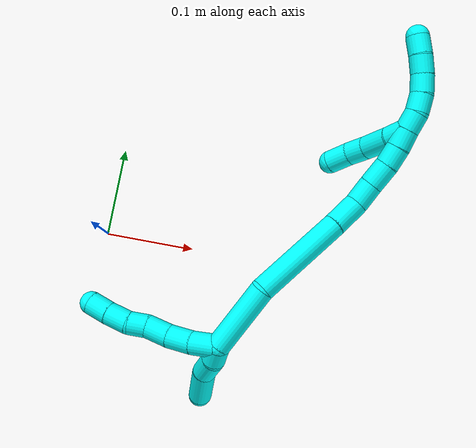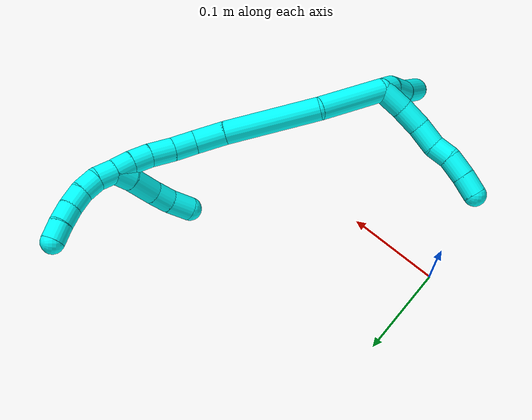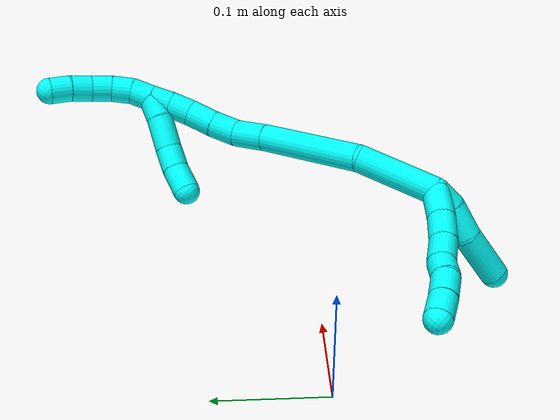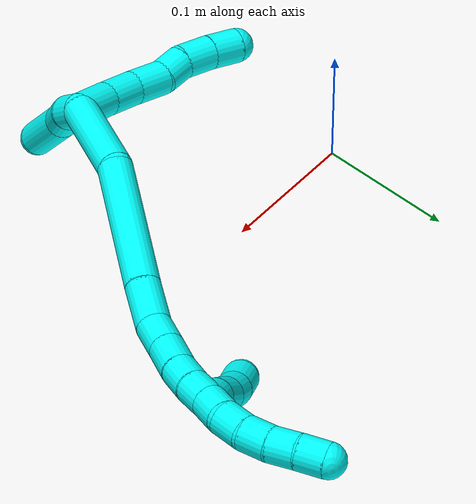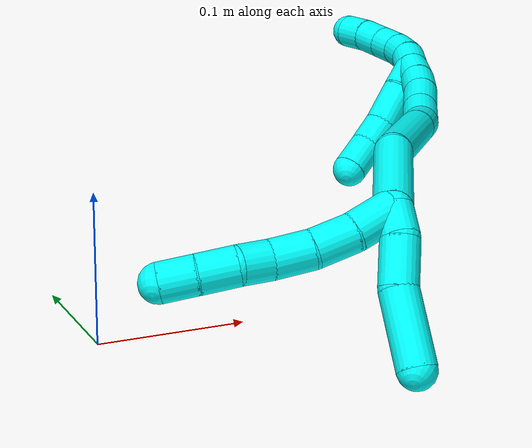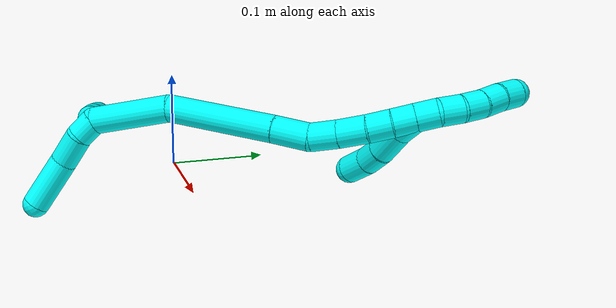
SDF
<sdf version="1.7">
 <world name="default">
  <model name="3">
   <static>0</static>
   <link name="3">
    <collision name="collision-cylinder-e_1_2_8">
     <pose>-0.003425 0.009764 -0.01035 -2.3853 -0.236238 0.580569</pose>
     <geometry><cylinder><radius>0.0125</radius><length>0.029271</length></cylinder></geometry>
     <surface>
      <friction><ode><mu>1.16</mu><mu2>1.16</mu2><slip1>0</slip1><slip2>0</slip2></ode></friction>
      <contact><ode><kp>1e+06</kp><kd>1</kd><max_vel>0</max_vel><min_depth>0.001</min_depth></ode></contact>
     </surface>
    </collision>
    <visual name="visual-cylinder-e_1_2_8">
     <pose>-0.003425 0.009764 -0.01035 -2.3853 -0.236238 0.580569</pose>
     <geometry><cylinder><radius>0.0125</radius><length>0.029271</length></cylinder></geometry>
     <material><ambient>0.003922 1 0.996078 1</ambient></material>
    </visual>
    <collision name="collision-cylinder-e_2_8_9">
     <pose>-0.011339 0.029308 -0.028654 -2.25359 -0.342036 0.696543</pose>
     <geometry><cylinder><radius>0.0125</radius><length>0.026762</length></cylinder></geometry>
     <surface>
      <friction><ode><mu>1.16</mu><mu2>1.16</mu2><slip1>0</slip1><slip2>0</slip2></ode></friction>
      <contact><ode><kp>1e+06</kp><kd>1</kd><max_vel>0</max_vel><min_depth>0.001</min_depth></ode></contact>
     </surface>
    </collision>
    <visual name="visual-cylinder-e_2_8_9">
     <pose>-0.011339 0.029308 -0.028654 -2.25359 -0.342036 0.696543</pose>
     <geometry><cylinder><radius>0.0125</radius><length>0.026762</length></cylinder></geometry>
     <material><ambient>0.003922 1 0.996078 1</ambient></material>
    </visual>
    <collision name="collision-cylinder-e_3_9_10">
     <pose>-0.021246 0.049394 -0.042582 -2.09618 -0.426945 0.719717</pose>
     <geometry><cylinder><radius>0.0125</radius><length>0.026175</length></cylinder></geometry>
     <surface>
      <friction><ode><mu>1.16</mu><mu2>1.16</mu2><slip1>0</slip1><slip2>0</slip2></ode></friction>
      <contact><ode><kp>1e+06</kp><kd>1</kd><max_vel>0</max_vel><min_depth>0.001</min_depth></ode></contact>
     </surface>
    </collision>
    <visual name="visual-cylinder-e_3_9_10">
     <pose>-0.021246 0.049394 -0.042582 -2.09618 -0.426945 0.719717</pose>
     <geometry><cylinder><radius>0.0125</radius><length>0.026175</length></cylinder></geometry>
     <material><ambient>0.003922 1 0.996078 1</ambient></material>
    </visual>
    <collision name="collision-cylinder-e_4_10_11">
     <pose>-0.032439 0.065698 -0.05448 -2.34992 -0.600462 1.27521</pose>
     <geometry><cylinder><radius>0.0125</radius><length>0.020434</length></cylinder></geometry>
     <surface>
      <friction><ode><mu>1.16</mu><mu2>1.16</mu2><slip1>0</slip1><slip2>0</slip2></ode></friction>
      <contact><ode><kp>1e+06</kp><kd>1</kd><max_vel>0</max_vel><min_depth>0.001</min_depth></ode></contact>
     </surface>
    </collision>
    <visual name="visual-cylinder-e_4_10_11">
     <pose>-0.032439 0.065698 -0.05448 -2.34992 -0.600462 1.27521</pose>
     <geometry><cylinder><radius>0.0125</radius><length>0.020434</length></cylinder></geometry>
     <material><ambient>0.003922 1 0.996078 1</ambient></material>
    </visual>
    <collision name="collision-cylinder-e_5_11_12">
     <pose>-0.043411 0.081353 -0.065646 -2.06818 -0.442009 0.722142</pose>
     <geometry><cylinder><radius>0.0125</radius><length>0.024314</length></cylinder></geometry>
     <surface>
      <friction><ode><mu>1.16</mu><mu2>1.16</mu2><slip1>0</slip1><slip2>0</slip2></ode></friction>
      <contact><ode><kp>1e+06</kp><kd>1</kd><max_vel>0</max_vel><min_depth>0.001</min_depth></ode></contact>
     </surface>
    </collision>
    <visual name="visual-cylinder-e_5_11_12">
     <pose>-0.043411 0.081353 -0.065646 -2.06818 -0.442009 0.722142</pose>
     <geometry><cylinder><radius>0.0125</radius><length>0.024314</length></cylinder></geometry>
     <material><ambient>0.003922 1 0.996078 1</ambient></material>
    </visual>
    <collision name="collision-cylinder-e_6_12_6">
     <pose>-0.053121 0.100711 -0.07517 -1.98642 -0.402113 0.60618</pose>
     <geometry><cylinder><radius>0.0125</radius><length>0.023045</length></cylinder></geometry>
     <surface>
      <friction><ode><mu>1.16</mu><mu2>1.16</mu2><slip1>0</slip1><slip2>0</slip2></ode></friction>
      <contact><ode><kp>1e+06</kp><kd>1</kd><max_vel>0</max_vel><min_depth>0.001</min_depth></ode></contact>
     </surface>
    </collision>
    <visual name="visual-cylinder-e_6_12_6">
     <pose>-0.053121 0.100711 -0.07517 -1.98642 -0.402113 0.60618</pose>
     <geometry><cylinder><radius>0.0125</radius><length>0.023045</length></cylinder></geometry>
     <material><ambient>0.003922 1 0.996078 1</ambient></material>
    </visual>
    <collision name="collision-cylinder-e_1_2_13">
     <pose>0.005015 -0.001183 -0.008786 3.00778 0.514754 2.64304</pose>
     <geometry><cylinder><radius>0.0125</radius><length>0.020371</length></cylinder></geometry>
     <surface>
      <friction><ode><mu>1.16</mu><mu2>1.16</mu2><slip1>0</slip1><slip2>0</slip2></ode></friction>
      <contact><ode><kp>1e+06</kp><kd>1</kd><max_vel>0</max_vel><min_depth>0.001</min_depth></ode></contact>
     </surface>
    </collision>
    <visual name="visual-cylinder-e_1_2_13">
     <pose>0.005015 -0.001183 -0.008786 3.00778 0.514754 2.64304</pose>
     <geometry><cylinder><radius>0.0125</radius><length>0.020371</length></cylinder></geometry>
     <material><ambient>0.003922 1 0.996078 1</ambient></material>
    </visual>
    <collision name="collision-cylinder-e_2_13_14">
     <pose>0.017852 0.000393 -0.030494 -2.93124 0.534561 -2.40567</pose>
     <geometry><cylinder><radius>0.0125</radius><length>0.03071</length></cylinder></geometry>
     <surface>
      <friction><ode><mu>1.16</mu><mu2>1.16</mu2><slip1>0</slip1><slip2>0</slip2></ode></friction>
      <contact><ode><kp>1e+06</kp><kd>1</kd><max_vel>0</max_vel><min_depth>0.001</min_depth></ode></contact>
     </surface>
    </collision>
    <visual name="visual-cylinder-e_2_13_14">
     <pose>0.017852 0.000393 -0.030494 -2.93124 0.534561 -2.40567</pose>
     <geometry><cylinder><radius>0.0125</radius><length>0.03071</length></cylinder></geometry>
     <material><ambient>0.003922 1 0.996078 1</ambient></material>
    </visual>
    <collision name="collision-cylinder-e_3_14_5">
     <pose>0.041312 0.002548 -0.062214 3.10944 0.693621 3.05269</pose>
     <geometry><cylinder><radius>0.0125</radius><length>0.048919</length></cylinder></geometry>
     <surface>
      <friction><ode><mu>1.16</mu><mu2>1.16</mu2><slip1>0</slip1><slip2>0</slip2></ode></friction>
      <contact><ode><kp>1e+06</kp><kd>1</kd><max_vel>0</max_vel><min_depth>0.001</min_depth></ode></contact>
     </surface>
    </collision>
    <visual name="visual-cylinder-e_3_14_5">
     <pose>0.041312 0.002548 -0.062214 3.10944 0.693621 3.05269</pose>
     <geometry><cylinder><radius>0.0125</radius><length>0.048919</length></cylinder></geometry>
     <material><ambient>0.003922 1 0.996078 1</ambient></material>
    </visual>
    <collision name="collision-cylinder-e_1_2_15">
     <pose>0.003718 0.009118 0.035752 -0.249702 0.100427 -0.012614</pose>
     <geometry><cylinder><radius>0.0125</radius><length>0.074166</length></cylinder></geometry>
     <surface>
      <friction><ode><mu>1.16</mu><mu2>1.16</mu2><slip1>0</slip1><slip2>0</slip2></ode></friction>
      <contact><ode><kp>1e+06</kp><kd>1</kd><max_vel>0</max_vel><min_depth>0.001</min_depth></ode></contact>
     </surface>
    </collision>
    <visual name="visual-cylinder-e_1_2_15">
     <pose>0.003718 0.009118 0.035752 -0.249702 0.100427 -0.012614</pose>
     <geometry><cylinder><radius>0.0125</radius><length>0.074166</length></cylinder></geometry>
     <material><ambient>0.003922 1 0.996078 1</ambient></material>
    </visual>
    <collision name="collision-cylinder-e_2_15_16">
     <pose>0.029214 0.030417 0.115458 -0.270363 0.445464 -0.061591</pose>
     <geometry><cylinder><radius>0.0125</radius><length>0.101088</length></cylinder></geometry>
     <surface>
      <friction><ode><mu>1.16</mu><mu2>1.16</mu2><slip1>0</slip1><slip2>0</slip2></ode></friction>
      <contact><ode><kp>1e+06</kp><kd>1</kd><max_vel>0</max_vel><min_depth>0.001</min_depth></ode></contact>
     </surface>
    </collision>
    <visual name="visual-cylinder-e_2_15_16">
     <pose>0.029214 0.030417 0.115458 -0.270363 0.445464 -0.061591</pose>
     <geometry><cylinder><radius>0.0125</radius><length>0.101088</length></cylinder></geometry>
     <material><ambient>0.003922 1 0.996078 1</ambient></material>
    </visual>
    <collision name="collision-cylinder-e_3_16_17">
     <pose>0.058246 0.047363 0.173335 -0.329687 0.457995 -0.07751</pose>
     <geometry><cylinder><radius>0.0125</radius><length>0.03281</length></cylinder></geometry>
     <surface>
      <friction><ode><mu>1.16</mu><mu2>1.16</mu2><slip1>0</slip1><slip2>0</slip2></ode></friction>
      <contact><ode><kp>1e+06</kp><kd>1</kd><max_vel>0</max_vel><min_depth>0.001</min_depth></ode></contact>
     </surface>
    </collision>
    <visual name="visual-cylinder-e_3_16_17">
     <pose>0.058246 0.047363 0.173335 -0.329687 0.457995 -0.07751</pose>
     <geometry><cylinder><radius>0.0125</radius><length>0.03281</length></cylinder></geometry>
     <material><ambient>0.003922 1 0.996078 1</ambient></material>
    </visual>
    <collision name="collision-cylinder-e_4_17_18">
     <pose>0.067064 0.055504 0.199166 -0.276332 0.125734 -0.017506</pose>
     <geometry><cylinder><radius>0.0125</radius><length>0.024956</length></cylinder></geometry>
     <surface>
      <friction><ode><mu>1.16</mu><mu2>1.16</mu2><slip1>0</slip1><slip2>0</slip2></ode></friction>
      <contact><ode><kp>1e+06</kp><kd>1</kd><max_vel>0</max_vel><min_depth>0.001</min_depth></ode></contact>
     </surface>
    </collision>
    <visual name="visual-cylinder-e_4_17_18">
     <pose>0.067064 0.055504 0.199166 -0.276332 0.125734 -0.017506</pose>
     <geometry><cylinder><radius>0.0125</radius><length>0.024956</length></cylinder></geometry>
     <material><ambient>0.003922 1 0.996078 1</ambient></material>
    </visual>
    <collision name="collision-cylinder-e_5_18_19">
     <pose>0.069742 0.061598 0.223635 -0.213039 0.08639 -0.009243</pose>
     <geometry><cylinder><radius>0.0125</radius><length>0.025795</length></cylinder></geometry>
     <surface>
      <friction><ode><mu>1.16</mu><mu2>1.16</mu2><slip1>0</slip1><slip2>0</slip2></ode></friction>
      <contact><ode><kp>1e+06</kp><kd>1</kd><max_vel>0</max_vel><min_depth>0.001</min_depth></ode></contact>
     </surface>
    </collision>
    <visual name="visual-cylinder-e_5_18_19">
     <pose>0.069742 0.061598 0.223635 -0.213039 0.08639 -0.009243</pose>
     <geometry><cylinder><radius>0.0125</radius><length>0.025795</length></cylinder></geometry>
     <material><ambient>0.003922 1 0.996078 1</ambient></material>
    </visual>
    <collision name="collision-cylinder-e_6_19_20">
     <pose>0.070944 0.067525 0.246284 -0.307982 0.00847 -0.001315</pose>
     <geometry><cylinder><radius>0.0125</radius><length>0.021178</length></cylinder></geometry>
     <surface>
      <friction><ode><mu>1.16</mu><mu2>1.16</mu2><slip1>0</slip1><slip2>0</slip2></ode></friction>
      <contact><ode><kp>1e+06</kp><kd>1</kd><max_vel>0</max_vel><min_depth>0.001</min_depth></ode></contact>
     </surface>
    </collision>
    <visual name="visual-cylinder-e_6_19_20">
     <pose>0.070944 0.067525 0.246284 -0.307982 0.00847 -0.001315</pose>
     <geometry><cylinder><radius>0.0125</radius><length>0.021178</length></cylinder></geometry>
     <material><ambient>0.003922 1 0.996078 1</ambient></material>
    </visual>
    <collision name="collision-cylinder-e_7_20_1">
     <pose>0.070702 0.074706 0.26555 -0.408535 -0.033181 0.006874</pose>
     <geometry><cylinder><radius>0.0125</radius><length>0.020007</length></cylinder></geometry>
     <surface>
      <friction><ode><mu>1.16</mu><mu2>1.16</mu2><slip1>0</slip1><slip2>0</slip2></ode></friction>
      <contact><ode><kp>1e+06</kp><kd>1</kd><max_vel>0</max_vel><min_depth>0.001</min_depth></ode></contact>
     </surface>
    </collision>
    <visual name="visual-cylinder-e_7_20_1">
     <pose>0.070702 0.074706 0.26555 -0.408535 -0.033181 0.006874</pose>
     <geometry><cylinder><radius>0.0125</radius><length>0.020007</length></cylinder></geometry>
     <material><ambient>0.003922 1 0.996078 1</ambient></material>
    </visual>
    <collision name="collision-cylinder-e_1_1_21">
     <pose>0.071869 0.08327 0.264968 -2.70178 0.13811 -0.600172</pose>
     <geometry><cylinder><radius>0.0125</radius><length>0.021774</length></cylinder></geometry>
     <surface>
      <friction><ode><mu>1.16</mu><mu2>1.16</mu2><slip1>0</slip1><slip2>0</slip2></ode></friction>
      <contact><ode><kp>1e+06</kp><kd>1</kd><max_vel>0</max_vel><min_depth>0.001</min_depth></ode></contact>
     </surface>
    </collision>
    <visual name="visual-cylinder-e_1_1_21">
     <pose>0.071869 0.08327 0.264968 -2.70178 0.13811 -0.600172</pose>
     <geometry><cylinder><radius>0.0125</radius><length>0.021774</length></cylinder></geometry>
     <material><ambient>0.003922 1 0.996078 1</ambient></material>
    </visual>
    <collision name="collision-cylinder-e_2_21_22">
     <pose>0.076937 0.095595 0.242061 -2.60998 0.22983 -0.801984</pose>
     <geometry><cylinder><radius>0.0125</radius><length>0.031337</length></cylinder></geometry>
     <surface>
      <friction><ode><mu>1.16</mu><mu2>1.16</mu2><slip1>0</slip1><slip2>0</slip2></ode></friction>
      <contact><ode><kp>1e+06</kp><kd>1</kd><max_vel>0</max_vel><min_depth>0.001</min_depth></ode></contact>
     </surface>
    </collision>
    <visual name="visual-cylinder-e_2_21_22">
     <pose>0.076937 0.095595 0.242061 -2.60998 0.22983 -0.801984</pose>
     <geometry><cylinder><radius>0.0125</radius><length>0.031337</length></cylinder></geometry>
     <material><ambient>0.003922 1 0.996078 1</ambient></material>
    </visual>
    <collision name="collision-cylinder-e_3_22_23">
     <pose>0.081457 0.108608 0.219385 -2.6354 0.087021 -0.33354</pose>
     <geometry><cylinder><radius>0.0125</radius><length>0.021863</length></cylinder></geometry>
     <surface>
      <friction><ode><mu>1.16</mu><mu2>1.16</mu2><slip1>0</slip1><slip2>0</slip2></ode></friction>
      <contact><ode><kp>1e+06</kp><kd>1</kd><max_vel>0</max_vel><min_depth>0.001</min_depth></ode></contact>
     </surface>
    </collision>
    <visual name="visual-cylinder-e_3_22_23">
     <pose>0.081457 0.108608 0.219385 -2.6354 0.087021 -0.33354</pose>
     <geometry><cylinder><radius>0.0125</radius><length>0.021863</length></cylinder></geometry>
     <material><ambient>0.003922 1 0.996078 1</ambient></material>
    </visual>
    <collision name="collision-cylinder-e_4_23_4">
     <pose>0.082209 0.118614 0.198276 -2.75432 -0.015818 0.080626</pose>
     <geometry><cylinder><radius>0.0125</radius><length>0.025027</length></cylinder></geometry>
     <surface>
      <friction><ode><mu>1.16</mu><mu2>1.16</mu2><slip1>0</slip1><slip2>0</slip2></ode></friction>
      <contact><ode><kp>1e+06</kp><kd>1</kd><max_vel>0</max_vel><min_depth>0.001</min_depth></ode></contact>
     </surface>
    </collision>
    <visual name="visual-cylinder-e_4_23_4">
     <pose>0.082209 0.118614 0.198276 -2.75432 -0.015818 0.080626</pose>
     <geometry><cylinder><radius>0.0125</radius><length>0.025027</length></cylinder></geometry>
     <material><ambient>0.003922 1 0.996078 1</ambient></material>
    </visual>
    <collision name="collision-cylinder-e_1_1_24">
     <pose>0.070283 0.082106 0.284119 -0.349913 -0.008704 0.001539</pose>
     <geometry><cylinder><radius>0.0125</radius><length>0.02</length></cylinder></geometry>
     <surface>
      <friction><ode><mu>1.16</mu><mu2>1.16</mu2><slip1>0</slip1><slip2>0</slip2></ode></friction>
      <contact><ode><kp>1e+06</kp><kd>1</kd><max_vel>0</max_vel><min_depth>0.001</min_depth></ode></contact>
     </surface>
    </collision>
    <visual name="visual-cylinder-e_1_1_24">
     <pose>0.070283 0.082106 0.284119 -0.349913 -0.008704 0.001539</pose>
     <geometry><cylinder><radius>0.0125</radius><length>0.02</length></cylinder></geometry>
     <material><ambient>0.003922 1 0.996078 1</ambient></material>
    </visual>
    <collision name="collision-cylinder-e_2_24_25">
     <pose>0.06983 0.091473 0.30155 -0.636279 -0.036644 0.012069</pose>
     <geometry><cylinder><radius>0.0125</radius><length>0.02</length></cylinder></geometry>
     <surface>
      <friction><ode><mu>1.16</mu><mu2>1.16</mu2><slip1>0</slip1><slip2>0</slip2></ode></friction>
      <contact><ode><kp>1e+06</kp><kd>1</kd><max_vel>0</max_vel><min_depth>0.001</min_depth></ode></contact>
     </surface>
    </collision>
    <visual name="visual-cylinder-e_2_24_25">
     <pose>0.06983 0.091473 0.30155 -0.636279 -0.036644 0.012069</pose>
     <geometry><cylinder><radius>0.0125</radius><length>0.02</length></cylinder></geometry>
     <material><ambient>0.003922 1 0.996078 1</ambient></material>
    </visual>
    <collision name="collision-cylinder-e_3_25_26">
     <pose>0.06792 0.1047 0.316258 -0.829737 -0.154952 0.068356</pose>
     <geometry><cylinder><radius>0.0125</radius><length>0.02</length></cylinder></geometry>
     <surface>
      <friction><ode><mu>1.16</mu><mu2>1.16</mu2><slip1>0</slip1><slip2>0</slip2></ode></friction>
      <contact><ode><kp>1e+06</kp><kd>1</kd><max_vel>0</max_vel><min_depth>0.001</min_depth></ode></contact>
     </surface>
    </collision>
    <visual name="visual-cylinder-e_3_25_26">
     <pose>0.06792 0.1047 0.316258 -0.829737 -0.154952 0.068356</pose>
     <geometry><cylinder><radius>0.0125</radius><length>0.02</length></cylinder></geometry>
     <material><ambient>0.003922 1 0.996078 1</ambient></material>
    </visual>
    <collision name="collision-cylinder-e_4_26_27">
     <pose>0.063589 0.119533 0.32887 -0.903628 -0.28255 0.137821</pose>
     <geometry><cylinder><radius>0.0125</radius><length>0.02</length></cylinder></geometry>
     <surface>
      <friction><ode><mu>1.16</mu><mu2>1.16</mu2><slip1>0</slip1><slip2>0</slip2></ode></friction>
      <contact><ode><kp>1e+06</kp><kd>1</kd><max_vel>0</max_vel><min_depth>0.001</min_depth></ode></contact>
     </surface>
    </collision>
    <visual name="visual-cylinder-e_4_26_27">
     <pose>0.063589 0.119533 0.32887 -0.903628 -0.28255 0.137821</pose>
     <geometry><cylinder><radius>0.0125</radius><length>0.02</length></cylinder></geometry>
     <material><ambient>0.003922 1 0.996078 1</ambient></material>
    </visual>
    <collision name="collision-cylinder-e_5_27_3">
     <pose>0.058622 0.13536 0.339975 -1.01342 -0.219656 0.12226</pose>
     <geometry><cylinder><radius>0.0125</radius><length>0.02</length></cylinder></geometry>
     <surface>
      <friction><ode><mu>1.16</mu><mu2>1.16</mu2><slip1>0</slip1><slip2>0</slip2></ode></friction>
      <contact><ode><kp>1e+06</kp><kd>1</kd><max_vel>0</max_vel><min_depth>0.001</min_depth></ode></contact>
     </surface>
    </collision>
    <visual name="visual-cylinder-e_5_27_3">
     <pose>0.058622 0.13536 0.339975 -1.01342 -0.219656 0.12226</pose>
     <geometry><cylinder><radius>0.0125</radius><length>0.02</length></cylinder></geometry>
     <material><ambient>0.003922 1 0.996078 1</ambient></material>
    </visual>
    <collision name="collision-sphere-3">
     <pose>0.056443 0.143643 0.345137 0 -0 0</pose>
     <geometry><sphere><radius>0.0125</radius></sphere></geometry>
     <surface>
      <friction><ode><mu>1.16</mu><mu2>1.16</mu2><slip1>0</slip1><slip2>0</slip2></ode></friction>
      <contact><ode><kp>1e+06</kp><kd>1</kd><max_vel>0</max_vel><min_depth>0.001</min_depth></ode></contact>
     </surface>
    </collision>
    <visual name="visual-sphere-3">
     <pose>0.056443 0.143643 0.345137 0 -0 0</pose>
     <geometry><sphere><radius>0.0125</radius></sphere></geometry>
     <material><ambient>0.003922 1 0.996078 1</ambient></material>
    </visual>
    <collision name="collision-sphere-27">
     <pose>0.0608 0.127077 0.334812 0 -0 0</pose>
     <geometry><sphere><radius>0.0125</radius></sphere></geometry>
     <surface>
      <friction><ode><mu>1.16</mu><mu2>1.16</mu2><slip1>0</slip1><slip2>0</slip2></ode></friction>
      <contact><ode><kp>1e+06</kp><kd>1</kd><max_vel>0</max_vel><min_depth>0.001</min_depth></ode></contact>
     </surface>
    </collision>
    <visual name="visual-sphere-27">
     <pose>0.0608 0.127077 0.334812 0 -0 0</pose>
     <geometry><sphere><radius>0.0125</radius></sphere></geometry>
     <material><ambient>0.003922 1 0.996078 1</ambient></material>
    </visual>
    <collision name="collision-sphere-26">
     <pose>0.066377 0.111989 0.322928 0 -0 0</pose>
     <geometry><sphere><radius>0.0125</radius></sphere></geometry>
     <surface>
      <friction><ode><mu>1.16</mu><mu2>1.16</mu2><slip1>0</slip1><slip2>0</slip2></ode></friction>
      <contact><ode><kp>1e+06</kp><kd>1</kd><max_vel>0</max_vel><min_depth>0.001</min_depth></ode></contact>
     </surface>
    </collision>
    <visual name="visual-sphere-26">
     <pose>0.066377 0.111989 0.322928 0 -0 0</pose>
     <geometry><sphere><radius>0.0125</radius></sphere></geometry>
     <material><ambient>0.003922 1 0.996078 1</ambient></material>
    </visual>
    <collision name="collision-sphere-25">
     <pose>0.069463 0.097411 0.309588 0 -0 0</pose>
     <geometry><sphere><radius>0.0125</radius></sphere></geometry>
     <surface>
      <friction><ode><mu>1.16</mu><mu2>1.16</mu2><slip1>0</slip1><slip2>0</slip2></ode></friction>
      <contact><ode><kp>1e+06</kp><kd>1</kd><max_vel>0</max_vel><min_depth>0.001</min_depth></ode></contact>
     </surface>
    </collision>
    <visual name="visual-sphere-25">
     <pose>0.069463 0.097411 0.309588 0 -0 0</pose>
     <geometry><sphere><radius>0.0125</radius></sphere></geometry>
     <material><ambient>0.003922 1 0.996078 1</ambient></material>
    </visual>
    <collision name="collision-sphere-24">
     <pose>0.070196 0.085534 0.293513 0 -0 0</pose>
     <geometry><sphere><radius>0.0125</radius></sphere></geometry>
     <surface>
      <friction><ode><mu>1.16</mu><mu2>1.16</mu2><slip1>0</slip1><slip2>0</slip2></ode></friction>
      <contact><ode><kp>1e+06</kp><kd>1</kd><max_vel>0</max_vel><min_depth>0.001</min_depth></ode></contact>
     </surface>
    </collision>
    <visual name="visual-sphere-24">
     <pose>0.070196 0.085534 0.293513 0 -0 0</pose>
     <geometry><sphere><radius>0.0125</radius></sphere></geometry>
     <material><ambient>0.003922 1 0.996078 1</ambient></material>
    </visual>
    <collision name="collision-sphere-4">
     <pose>0.082011 0.123339 0.18669 0 -0 0</pose>
     <geometry><sphere><radius>0.0125</radius></sphere></geometry>
     <surface>
      <friction><ode><mu>1.16</mu><mu2>1.16</mu2><slip1>0</slip1><slip2>0</slip2></ode></friction>
      <contact><ode><kp>1e+06</kp><kd>1</kd><max_vel>0</max_vel><min_depth>0.001</min_depth></ode></contact>
     </surface>
    </collision>
    <visual name="visual-sphere-4">
     <pose>0.082011 0.123339 0.18669 0 -0 0</pose>
     <geometry><sphere><radius>0.0125</radius></sphere></geometry>
     <material><ambient>0.003922 1 0.996078 1</ambient></material>
    </visual>
    <collision name="collision-sphere-23">
     <pose>0.082407 0.113888 0.209861 0 -0 0</pose>
     <geometry><sphere><radius>0.0125</radius></sphere></geometry>
     <surface>
      <friction><ode><mu>1.16</mu><mu2>1.16</mu2><slip1>0</slip1><slip2>0</slip2></ode></friction>
      <contact><ode><kp>1e+06</kp><kd>1</kd><max_vel>0</max_vel><min_depth>0.001</min_depth></ode></contact>
     </surface>
    </collision>
    <visual name="visual-sphere-23">
     <pose>0.082407 0.113888 0.209861 0 -0 0</pose>
     <geometry><sphere><radius>0.0125</radius></sphere></geometry>
     <material><ambient>0.003922 1 0.996078 1</ambient></material>
    </visual>
    <collision name="collision-sphere-22">
     <pose>0.080506 0.103328 0.22891 0 -0 0</pose>
     <geometry><sphere><radius>0.0125</radius></sphere></geometry>
     <surface>
      <friction><ode><mu>1.16</mu><mu2>1.16</mu2><slip1>0</slip1><slip2>0</slip2></ode></friction>
      <contact><ode><kp>1e+06</kp><kd>1</kd><max_vel>0</max_vel><min_depth>0.001</min_depth></ode></contact>
     </surface>
    </collision>
    <visual name="visual-sphere-22">
     <pose>0.080506 0.103328 0.22891 0 -0 0</pose>
     <geometry><sphere><radius>0.0125</radius></sphere></geometry>
     <material><ambient>0.003922 1 0.996078 1</ambient></material>
    </visual>
    <collision name="collision-sphere-21">
     <pose>0.073368 0.087861 0.255211 0 -0 0</pose>
     <geometry><sphere><radius>0.0125</radius></sphere></geometry>
     <surface>
      <friction><ode><mu>1.16</mu><mu2>1.16</mu2><slip1>0</slip1><slip2>0</slip2></ode></friction>
      <contact><ode><kp>1e+06</kp><kd>1</kd><max_vel>0</max_vel><min_depth>0.001</min_depth></ode></contact>
     </surface>
    </collision>
    <visual name="visual-sphere-21">
     <pose>0.073368 0.087861 0.255211 0 -0 0</pose>
     <geometry><sphere><radius>0.0125</radius></sphere></geometry>
     <material><ambient>0.003922 1 0.996078 1</ambient></material>
    </visual>
    <collision name="collision-sphere-1">
     <pose>0.07037 0.078678 0.274725 0 -0 0</pose>
     <geometry><sphere><radius>0.0125</radius></sphere></geometry>
     <surface>
      <friction><ode><mu>1.16</mu><mu2>1.16</mu2><slip1>0</slip1><slip2>0</slip2></ode></friction>
      <contact><ode><kp>1e+06</kp><kd>1</kd><max_vel>0</max_vel><min_depth>0.001</min_depth></ode></contact>
     </surface>
    </collision>
    <visual name="visual-sphere-1">
     <pose>0.07037 0.078678 0.274725 0 -0 0</pose>
     <geometry><sphere><radius>0.0125</radius></sphere></geometry>
     <material><ambient>0.003922 1 0.996078 1</ambient></material>
    </visual>
    <collision name="collision-sphere-12">
     <pose>-0.048612 0.09101 -0.070889 0 -0 0</pose>
     <geometry><sphere><radius>0.0125</radius></sphere></geometry>
     <surface>
      <friction><ode><mu>1.16</mu><mu2>1.16</mu2><slip1>0</slip1><slip2>0</slip2></ode></friction>
      <contact><ode><kp>1e+06</kp><kd>1</kd><max_vel>0</max_vel><min_depth>0.001</min_depth></ode></contact>
     </surface>
    </collision>
    <visual name="visual-sphere-12">
     <pose>-0.048612 0.09101 -0.070889 0 -0 0</pose>
     <geometry><sphere><radius>0.0125</radius></sphere></geometry>
     <material><ambient>0.003922 1 0.996078 1</ambient></material>
    </visual>
    <collision name="collision-sphere-11">
     <pose>-0.038211 0.071696 -0.060403 0 -0 0</pose>
     <geometry><sphere><radius>0.0125</radius></sphere></geometry>
     <surface>
      <friction><ode><mu>1.16</mu><mu2>1.16</mu2><slip1>0</slip1><slip2>0</slip2></ode></friction>
      <contact><ode><kp>1e+06</kp><kd>1</kd><max_vel>0</max_vel><min_depth>0.001</min_depth></ode></contact>
     </surface>
    </collision>
    <visual name="visual-sphere-11">
     <pose>-0.038211 0.071696 -0.060403 0 -0 0</pose>
     <geometry><sphere><radius>0.0125</radius></sphere></geometry>
     <material><ambient>0.003922 1 0.996078 1</ambient></material>
    </visual>
    <collision name="collision-sphere-10">
     <pose>-0.026666 0.0597 -0.048557 0 -0 0</pose>
     <geometry><sphere><radius>0.0125</radius></sphere></geometry>
     <surface>
      <friction><ode><mu>1.16</mu><mu2>1.16</mu2><slip1>0</slip1><slip2>0</slip2></ode></friction>
      <contact><ode><kp>1e+06</kp><kd>1</kd><max_vel>0</max_vel><min_depth>0.001</min_depth></ode></contact>
     </surface>
    </collision>
    <visual name="visual-sphere-10">
     <pose>-0.026666 0.0597 -0.048557 0 -0 0</pose>
     <geometry><sphere><radius>0.0125</radius></sphere></geometry>
     <material><ambient>0.003922 1 0.996078 1</ambient></material>
    </visual>
    <collision name="collision-sphere-9">
     <pose>-0.015827 0.039088 -0.036608 0 -0 0</pose>
     <geometry><sphere><radius>0.0125</radius></sphere></geometry>
     <surface>
      <friction><ode><mu>1.16</mu><mu2>1.16</mu2><slip1>0</slip1><slip2>0</slip2></ode></friction>
      <contact><ode><kp>1e+06</kp><kd>1</kd><max_vel>0</max_vel><min_depth>0.001</min_depth></ode></contact>
     </surface>
    </collision>
    <visual name="visual-sphere-9">
     <pose>-0.015827 0.039088 -0.036608 0 -0 0</pose>
     <geometry><sphere><radius>0.0125</radius></sphere></geometry>
     <material><ambient>0.003922 1 0.996078 1</ambient></material>
    </visual>
    <collision name="collision-sphere-2">
     <geometry><sphere><radius>0.0125</radius></sphere></geometry>
     <surface>
      <friction><ode><mu>1.16</mu><mu2>1.16</mu2><slip1>0</slip1><slip2>0</slip2></ode></friction>
      <contact><ode><kp>1e+06</kp><kd>1</kd><max_vel>0</max_vel><min_depth>0.001</min_depth></ode></contact>
     </surface>
    </collision>
    <visual name="visual-sphere-2">
     <geometry><sphere><radius>0.0125</radius></sphere></geometry>
     <material><ambient>0.003922 1 0.996078 1</ambient></material>
    </visual>
    <collision name="collision-sphere-19">
     <pose>0.070854 0.064315 0.236194 0 -0 0</pose>
     <geometry><sphere><radius>0.0125</radius></sphere></geometry>
     <surface>
      <friction><ode><mu>1.16</mu><mu2>1.16</mu2><slip1>0</slip1><slip2>0</slip2></ode></friction>
      <contact><ode><kp>1e+06</kp><kd>1</kd><max_vel>0</max_vel><min_depth>0.001</min_depth></ode></contact>
     </surface>
    </collision>
    <visual name="visual-sphere-19">
     <pose>0.070854 0.064315 0.236194 0 -0 0</pose>
     <geometry><sphere><radius>0.0125</radius></sphere></geometry>
     <material><ambient>0.003922 1 0.996078 1</ambient></material>
    </visual>
    <collision name="collision-sphere-8">
     <pose>-0.006851 0.019529 -0.0207 0 -0 0</pose>
     <geometry><sphere><radius>0.0125</radius></sphere></geometry>
     <surface>
      <friction><ode><mu>1.16</mu><mu2>1.16</mu2><slip1>0</slip1><slip2>0</slip2></ode></friction>
      <contact><ode><kp>1e+06</kp><kd>1</kd><max_vel>0</max_vel><min_depth>0.001</min_depth></ode></contact>
     </surface>
    </collision>
    <visual name="visual-sphere-8">
     <pose>-0.006851 0.019529 -0.0207 0 -0 0</pose>
     <geometry><sphere><radius>0.0125</radius></sphere></geometry>
     <material><ambient>0.003922 1 0.996078 1</ambient></material>
    </visual>
    <collision name="collision-sphere-6">
     <pose>-0.05763 0.110412 -0.079452 0 -0 0</pose>
     <geometry><sphere><radius>0.0125</radius></sphere></geometry>
     <surface>
      <friction><ode><mu>1.16</mu><mu2>1.16</mu2><slip1>0</slip1><slip2>0</slip2></ode></friction>
      <contact><ode><kp>1e+06</kp><kd>1</kd><max_vel>0</max_vel><min_depth>0.001</min_depth></ode></contact>
     </surface>
    </collision>
    <visual name="visual-sphere-6">
     <pose>-0.05763 0.110412 -0.079452 0 -0 0</pose>
     <geometry><sphere><radius>0.0125</radius></sphere></geometry>
     <material><ambient>0.003922 1 0.996078 1</ambient></material>
    </visual>
    <collision name="collision-sphere-13">
     <pose>0.010029 -0.002366 -0.017573 0 -0 0</pose>
     <geometry><sphere><radius>0.0125</radius></sphere></geometry>
     <surface>
      <friction><ode><mu>1.16</mu><mu2>1.16</mu2><slip1>0</slip1><slip2>0</slip2></ode></friction>
      <contact><ode><kp>1e+06</kp><kd>1</kd><max_vel>0</max_vel><min_depth>0.001</min_depth></ode></contact>
     </surface>
    </collision>
    <visual name="visual-sphere-13">
     <pose>0.010029 -0.002366 -0.017573 0 -0 0</pose>
     <geometry><sphere><radius>0.0125</radius></sphere></geometry>
     <material><ambient>0.003922 1 0.996078 1</ambient></material>
    </visual>
    <collision name="collision-sphere-14">
     <pose>0.025675 0.003152 -0.043416 0 -0 0</pose>
     <geometry><sphere><radius>0.0125</radius></sphere></geometry>
     <surface>
      <friction><ode><mu>1.16</mu><mu2>1.16</mu2><slip1>0</slip1><slip2>0</slip2></ode></friction>
      <contact><ode><kp>1e+06</kp><kd>1</kd><max_vel>0</max_vel><min_depth>0.001</min_depth></ode></contact>
     </surface>
    </collision>
    <visual name="visual-sphere-14">
     <pose>0.025675 0.003152 -0.043416 0 -0 0</pose>
     <geometry><sphere><radius>0.0125</radius></sphere></geometry>
     <material><ambient>0.003922 1 0.996078 1</ambient></material>
    </visual>
    <collision name="collision-sphere-5">
     <pose>0.05695 0.001943 -0.081012 0 -0 0</pose>
     <geometry><sphere><radius>0.0125</radius></sphere></geometry>
     <surface>
      <friction><ode><mu>1.16</mu><mu2>1.16</mu2><slip1>0</slip1><slip2>0</slip2></ode></friction>
      <contact><ode><kp>1e+06</kp><kd>1</kd><max_vel>0</max_vel><min_depth>0.001</min_depth></ode></contact>
     </surface>
    </collision>
    <visual name="visual-sphere-5">
     <pose>0.05695 0.001943 -0.081012 0 -0 0</pose>
     <geometry><sphere><radius>0.0125</radius></sphere></geometry>
     <material><ambient>0.003922 1 0.996078 1</ambient></material>
    </visual>
    <collision name="collision-sphere-15">
     <pose>0.007436 0.018235 0.071503 0 -0 0</pose>
     <geometry><sphere><radius>0.0125</radius></sphere></geometry>
     <surface>
      <friction><ode><mu>1.16</mu><mu2>1.16</mu2><slip1>0</slip1><slip2>0</slip2></ode></friction>
      <contact><ode><kp>1e+06</kp><kd>1</kd><max_vel>0</max_vel><min_depth>0.001</min_depth></ode></contact>
     </surface>
    </collision>
    <visual name="visual-sphere-15">
     <pose>0.007436 0.018235 0.071503 0 -0 0</pose>
     <geometry><sphere><radius>0.0125</radius></sphere></geometry>
     <material><ambient>0.003922 1 0.996078 1</ambient></material>
    </visual>
    <collision name="collision-sphere-16">
     <pose>0.050992 0.042599 0.159413 0 -0 0</pose>
     <geometry><sphere><radius>0.0125</radius></sphere></geometry>
     <surface>
      <friction><ode><mu>1.16</mu><mu2>1.16</mu2><slip1>0</slip1><slip2>0</slip2></ode></friction>
      <contact><ode><kp>1e+06</kp><kd>1</kd><max_vel>0</max_vel><min_depth>0.001</min_depth></ode></contact>
     </surface>
    </collision>
    <visual name="visual-sphere-16">
     <pose>0.050992 0.042599 0.159413 0 -0 0</pose>
     <geometry><sphere><radius>0.0125</radius></sphere></geometry>
     <material><ambient>0.003922 1 0.996078 1</ambient></material>
    </visual>
    <collision name="collision-sphere-17">
     <pose>0.065499 0.052127 0.187257 0 -0 0</pose>
     <geometry><sphere><radius>0.0125</radius></sphere></geometry>
     <surface>
      <friction><ode><mu>1.16</mu><mu2>1.16</mu2><slip1>0</slip1><slip2>0</slip2></ode></friction>
      <contact><ode><kp>1e+06</kp><kd>1</kd><max_vel>0</max_vel><min_depth>0.001</min_depth></ode></contact>
     </surface>
    </collision>
    <visual name="visual-sphere-17">
     <pose>0.065499 0.052127 0.187257 0 -0 0</pose>
     <geometry><sphere><radius>0.0125</radius></sphere></geometry>
     <material><ambient>0.003922 1 0.996078 1</ambient></material>
    </visual>
    <collision name="collision-sphere-18">
     <pose>0.068629 0.058881 0.211076 0 -0 0</pose>
     <geometry><sphere><radius>0.0125</radius></sphere></geometry>
     <surface>
      <friction><ode><mu>1.16</mu><mu2>1.16</mu2><slip1>0</slip1><slip2>0</slip2></ode></friction>
      <contact><ode><kp>1e+06</kp><kd>1</kd><max_vel>0</max_vel><min_depth>0.001</min_depth></ode></contact>
     </surface>
    </collision>
    <visual name="visual-sphere-18">
     <pose>0.068629 0.058881 0.211076 0 -0 0</pose>
     <geometry><sphere><radius>0.0125</radius></sphere></geometry>
     <material><ambient>0.003922 1 0.996078 1</ambient></material>
    </visual>
    <collision name="collision-sphere-20">
     <pose>0.071034 0.070735 0.256375 0 -0 0</pose>
     <geometry><sphere><radius>0.0125</radius></sphere></geometry>
     <surface>
      <friction><ode><mu>1.16</mu><mu2>1.16</mu2><slip1>0</slip1><slip2>0</slip2></ode></friction>
      <contact><ode><kp>1e+06</kp><kd>1</kd><max_vel>0</max_vel><min_depth>0.001</min_depth></ode></contact>
     </surface>
    </collision>
    <visual name="visual-sphere-20">
     <pose>0.071034 0.070735 0.256375 0 -0 0</pose>
     <geometry><sphere><radius>0.0125</radius></sphere></geometry>
     <material><ambient>0.003922 1 0.996078 1</ambient></material>
    </visual>
    <inertial>
     <pose>0.032957 0.053515 0.113362 0 -0 0</pose>
     <mass>0.75</mass>
     <inertia>
      <ixx>0.000145</ixx>
      <ixy>0</ixy>
      <ixz>0</ixz>
      <iyy>0.000168</iyy>
      <iyz>0</iyz>
      <izz>-9.6e-05</izz>
     </inertia>
    </inertial>
   </link>
   <pose>0.15429 -0.102374 0.099769 -0.796435 0.93504 0.002742</pose>
  </model>
 </world>
</sdf>
